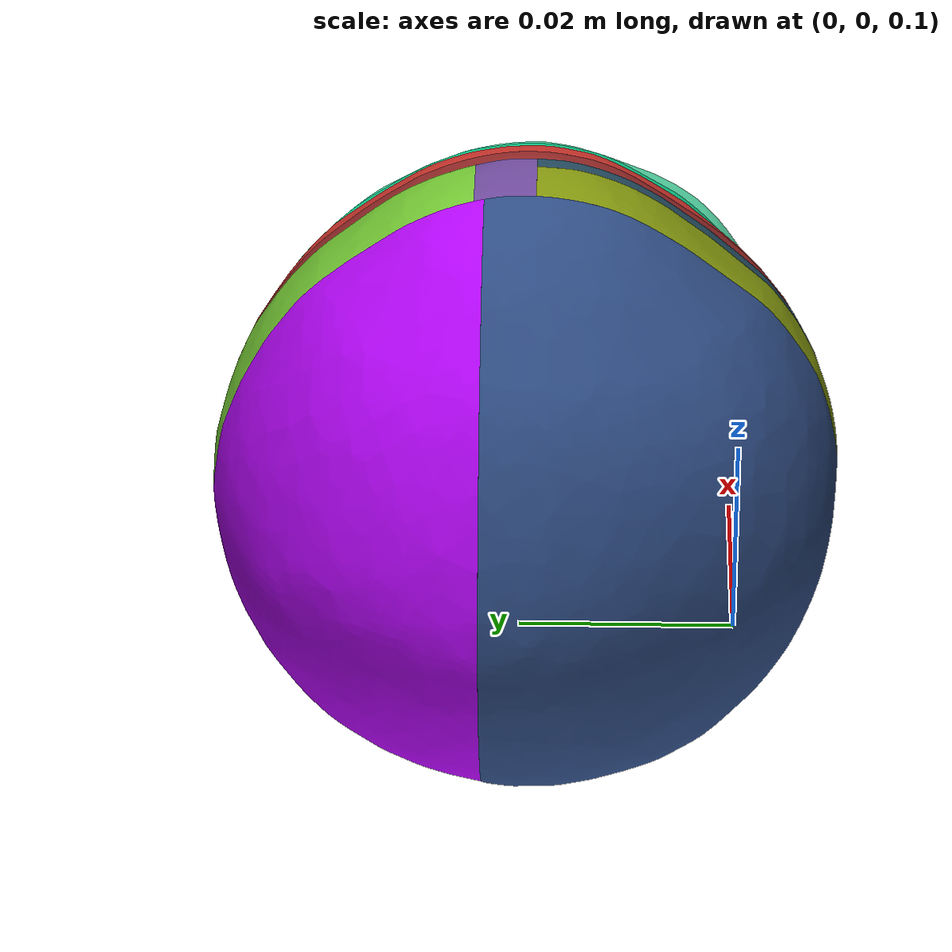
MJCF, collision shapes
<mujoco model="018_plum">
  <compiler assetdir="meshes" texturedir="materials"/>

  <asset>
    <texture type="2d" name="texture" file="018_plum_texture_map.png"/>
    <material name="texture" texture="texture"/>

    <mesh file="018_plum_textured.obj"/>
    <mesh file="018_plum_coacd_part_000.obj"/>
    <mesh file="018_plum_coacd_part_001.obj"/>
    <mesh file="018_plum_coacd_part_002.obj"/>
    <mesh file="018_plum_coacd_part_003.obj"/>
    <mesh file="018_plum_coacd_part_004.obj"/>
    <mesh file="018_plum_coacd_part_005.obj"/>
    <mesh file="018_plum_coacd_part_006.obj"/>
    <mesh file="018_plum_coacd_part_007.obj"/>
    <mesh file="018_plum_coacd_part_008.obj"/>
    <mesh file="018_plum_coacd_part_009.obj"/>
  </asset>

  <default>
    <default class="018_plum">
      <default class="visual_018_plum">
        <geom type="mesh" group="2" density="200" contype="0" conaffinity="0" material="texture"/>
      </default>
      <default class="collision_018_plum">
        <geom type="mesh" group="3" mass="0" density="0" solref=".004 1" friction="1.0 0.01 0.01" condim="6"/>
      </default>
    </default>
  </default>

  <worldbody>
    <body childclass="018_plum" pos="0 0 0.1">
      <freejoint/>
      <geom class="visual_018_plum" mesh="018_plum_textured"/>
      <geom class="collision_018_plum" mesh="018_plum_coacd_part_000" rgba="0.375 0.95 0.73 1"/>
      <geom class="collision_018_plum" mesh="018_plum_coacd_part_001" rgba="0.599 0.16 0.16 1"/>
      <geom class="collision_018_plum" mesh="018_plum_coacd_part_002" rgba="0.058 0.87 0.60 1"/>
      <geom class="collision_018_plum" mesh="018_plum_coacd_part_003" rgba="0.708 0.02 0.97 1"/>
      <geom class="collision_018_plum" mesh="018_plum_coacd_part_004" rgba="0.832 0.21 0.18 1"/>
      <geom class="collision_018_plum" mesh="018_plum_coacd_part_005" rgba="0.183 0.30 0.52 1"/>
      <geom class="collision_018_plum" mesh="018_plum_coacd_part_006" rgba="0.432 0.29 0.61 1"/>
      <geom class="collision_018_plum" mesh="018_plum_coacd_part_007" rgba="0.139 0.29 0.37 1"/>
      <geom class="collision_018_plum" mesh="018_plum_coacd_part_008" rgba="0.456 0.79 0.20 1"/>
      <geom class="collision_018_plum" mesh="018_plum_coacd_part_009" rgba="0.514 0.59 0.05 1"/>
    </body>
  </worldbody>
</mujoco>
